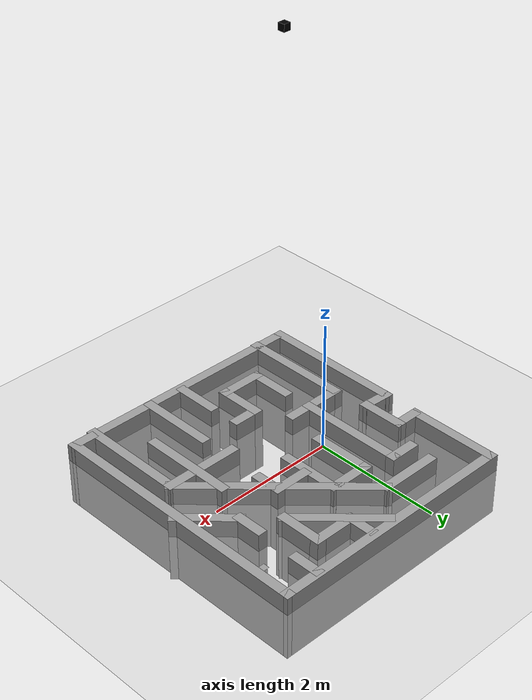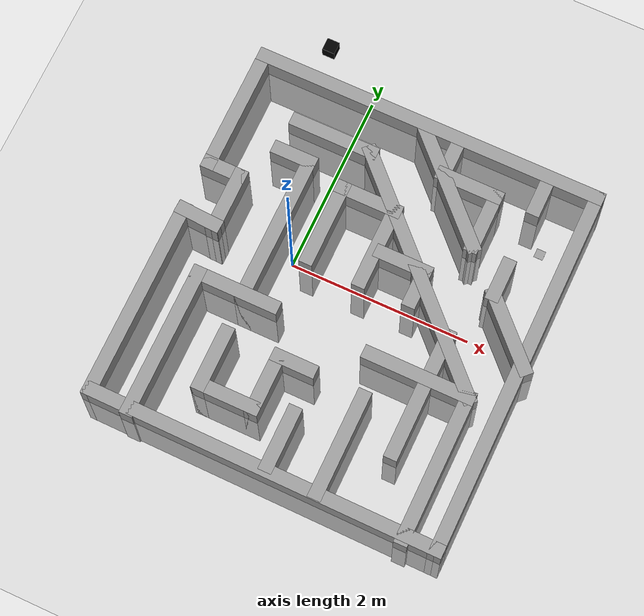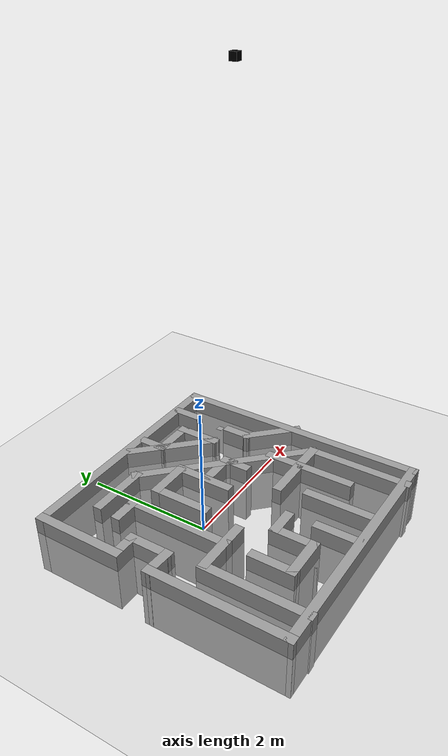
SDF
<sdf version="1.7">
 <world name="default">
  <model name="ground_plane">
   <static>1</static>
   <link name="link">
    <collision name="collision">
     <geometry><plane><normal>0 0 1</normal><size>100 100</size></plane></geometry>
     <surface>
      <contact><collide_bitmask>65535</collide_bitmask></contact>
      <friction><ode><mu>100</mu><mu2>50</mu2></ode></friction>
     </surface>
    </collision>
    <visual name="visual">
     <cast_shadows>0</cast_shadows>
     <geometry><plane><normal>0 0 1</normal><size>100 100</size></plane></geometry>
     <material>
      <script><uri>file://media/materials/scripts/gazebo.material</uri><name>Gazebo/Grey</name></script>
     </material>
    </visual>
   </link>
  </model>
  <light name="sun" type="directional">
   <pose>0 3 10 0 -0 0</pose>
   <diffuse>0.8 0.8 0.8 1</diffuse>
   <specular>0.2 0.2 0.2 1</specular>
   <attenuation>
    <range>1000</range>
    <constant>0.9</constant>
    <linear>0.01</linear>
    <quadratic>0.001</quadratic>
   </attenuation>
   <direction>-0.5 0.1 -0.9</direction>
   <spot><inner_angle>0</inner_angle><outer_angle>0</outer_angle><falloff>0</falloff></spot>
  </light>
  <scene><shadows>0</shadows><ambient>0.4 0.4 0.4 1</ambient><background>0.7 0.7 0.7 1</background></scene>
  <physics type="ode">
   <real_time_update_rate>1000</real_time_update_rate>
   <max_step_size>0.001</max_step_size>
   <real_time_factor>1</real_time_factor>
   <ode>
    <solver>
     <type>quick</type>
     <iters>150</iters>
     <precon_iters>0</precon_iters>
     <sor>1.4</sor>
     <use_dynamic_moi_rescaling>1</use_dynamic_moi_rescaling>
    </solver>
    <constraints>
     <cfm>1e-05</cfm>
     <erp>0.2</erp>
     <contact_max_correcting_vel>2000</contact_max_correcting_vel>
     <contact_surface_layer>0.01</contact_surface_layer>
    </constraints>
   </ode>
  </physics>
  <gravity>0 0 -9.8</gravity>
  <magnetic_field>6e-06 2.3e-05 -4.2e-05</magnetic_field>
  <atmosphere type="adiabatic"/>
  <audio><device>default</device></audio>
  <spherical_coordinates>
   <surface_model>EARTH_WGS84</surface_model>
   <latitude_deg>0</latitude_deg>
   <longitude_deg>0</longitude_deg>
   <elevation>0</elevation>
   <heading_deg>0</heading_deg>
  </spherical_coordinates>
  <model name="camera">
   <pose>0.579863 -0.18546 6.32055 1.57079 1.57079 3.14159</pose>
   <static>1</static>
   <link name="link">
    <inertial>
     <mass>0.1</mass>
     <inertia>
      <ixx>0.000166667</ixx>
      <iyy>0.000166667</iyy>
      <izz>0.000166667</izz>
      <ixy>0</ixy>
      <ixz>0</ixz>
      <iyz>0</iyz>
     </inertia>
    </inertial>
    <collision name="collision"><geometry><box><size>0.1 0.1 0.1</size></box></geometry></collision>
    <visual name="visual">
     <geometry><box><size>0.1 0.1 0.1</size></box></geometry>
     <material>
      <ambient>0 0 0 1</ambient>
      <diffuse>0 0 0 1</diffuse>
      <specular>0 0 0 0</specular>
      <emissive>1 0 0 1</emissive>
     </material>
    </visual>
    <sensor name="camera" type="camera">
     <camera>
      <horizontal_fov>0.934</horizontal_fov>
      <image><width>1920</width><height>1080</height></image>
      <clip><near>0.1</near><far>100</far></clip>
      <aspect_ratio>1.76</aspect_ratio>
     </camera>
     <plugin name="camera_controller" filename="libgazebo_ros_camera.so"/>
     <always_on>1</always_on>
     <update_rate>30</update_rate>
     <visualize>1</visualize>
    </sensor>
   </link>
  </model>
  <model name="mazeSWY">
   <static>1</static>
   <pose>0.699615 -0.12817 -0.743142 0 -0 0</pose>
   <include><uri>model://mazeSWY</uri></include>
  </model>
  <model name="Square_goal">
   <link name="link_0">
    <inertial>
     <mass>1</mass>
     <inertia>
      <ixx>0.166667</ixx>
      <ixy>0</ixy>
      <ixz>0</ixz>
      <iyy>0.166667</iyy>
      <iyz>0</iyz>
      <izz>0.166667</izz>
     </inertia>
    </inertial>
    <visual name="visual">
     <geometry><box><size>0.1 0.1 0.001</size></box></geometry>
     <material>
      <lighting>1</lighting>
      <script><uri>file://media/materials/scripts/gazebo.material</uri><name>Gazebo/Grey</name></script>
      <shader type="pixel"><normal_map>__default__</normal_map></shader>
      <ambient>0.3 0.3 0.3 1</ambient>
      <diffuse>0.7 0.7 0.7 1</diffuse>
      <specular>0.01 0.01 0.01 1</specular>
      <emissive>0 1 0 1</emissive>
     </material>
    </visual>
    <collision name="collision">
     <geometry><box><size>0.1 0.1 0.001</size></box></geometry>
     <surface>
      <friction>
       <ode><mu>1</mu><mu2>1</mu2><fdir1>0 0 0</fdir1><slip1>0</slip1><slip2>0</slip2></ode>
       <torsional>
        <coefficient>1</coefficient>
        <patch_radius>0</patch_radius>
        <surface_radius>0</surface_radius>
        <use_patch_radius>1</use_patch_radius>
        <ode><slip>0</slip></ode>
       </torsional>
      </friction>
      <bounce><restitution_coefficient>0</restitution_coefficient><threshold>1e+06</threshold></bounce>
      <contact>
       <collide_without_contact>0</collide_without_contact>
       <collide_without_contact_bitmask>1</collide_without_contact_bitmask>
       <collide_bitmask>1</collide_bitmask>
       <ode>
        <soft_cfm>0</soft_cfm>
        <soft_erp>0.2</soft_erp>
        <kp>1e+13</kp>
        <kd>1</kd>
        <max_vel>0.01</max_vel>
        <min_depth>0</min_depth>
       </ode>
       <bullet>
        <split_impulse>1</split_impulse>
        <split_impulse_penetration_threshold>-0.01</split_impulse_penetration_threshold>
        <soft_cfm>0</soft_cfm>
        <soft_erp>0.2</soft_erp>
        <kp>1e+13</kp>
        <kd>1</kd>
       </bullet>
      </contact>
     </surface>
    </collision>
   </link>
   <static>0</static>
   <pose>2.29996 1.20066 0.0005 0 -0 0</pose>
  </model>
 </world>
</sdf>

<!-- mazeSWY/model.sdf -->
<sdf version='1.6'>
  <model name='mazeSWY'>
    <pose frame=''>0.013574 -0.002409 0 0 -0 0</pose>
    <link name='Wall_0'>
      <collision name='Wall_0_Collision'>
        <geometry>
          <box>
            <size>4.03012 0.15 1</size>
          </box>
        </geometry>
        <pose frame=''>0 0 0.5 0 -0 0</pose>
      </collision>
      <visual name='Wall_0_Visual'>
        <pose frame=''>0 0 0.5 0 -0 0</pose>
        <geometry>
          <box>
            <size>4.03012 0.15 1</size>
          </box>
        </geometry>
        <material>
          <script>
            <uri>file://media/materials/scripts/gazebo.material</uri>
            <name>Gazebo/Grey</name>
          </script>
          <ambient>1 1 1 1</ambient>
        </material>
      </visual>
      <pose frame=''>-0.033574 -2.02259 0 0 0 -0.007732</pose>
    </link>
    <link name='Wall_11'>
      <collision name='Wall_11_Collision'>
        <geometry>
          <box>
            <size>1.75 0.15 1</size>
          </box>
        </geometry>
        <pose frame=''>0 0 0.5 0 -0 0</pose>
      </collision>
      <visual name='Wall_11_Visual'>
        <pose frame=''>0 0 0.5 0 -0 0</pose>
        <geometry>
          <box>
            <size>1.75 0.15 1</size>
          </box>
        </geometry>
        <material>
          <script>
            <uri>file://media/materials/scripts/gazebo.material</uri>
            <name>Gazebo/Grey</name>
          </script>
          <ambient>1 1 1 1</ambient>
        </material>
      </visual>
      <pose frame=''>-1.52357 -1.22759 0 0 -0 1.5708</pose>
    </link>

    <link name='Wall_2'>
      <collision name='Wall_2_Collision'>
        <geometry>
          <box>
            <size>4.26001 0.15 1</size>
          </box>
        </geometry>
        <pose frame=''>0 0 0.5 0 -0 0</pose>
      </collision>
      <visual name='Wall_2_Visual'>
        <pose frame=''>0 0 0.5 0 -0 0</pose>
        <geometry>
          <box>
            <size>4.26001 0.15 1</size>
          </box>
        </geometry>
        <material>
          <script>
            <uri>file://media/materials/scripts/gazebo.material</uri>
            <name>Gazebo/Grey</name>
          </script>
          <ambient>1 1 1 1</ambient>
        </material>
      </visual>
      <pose frame=''>1.90143 0.017409 0 0 -0 1.57323</pose>
    </link>
    <link name='Wall_205'>
      <collision name='Wall_205_Collision'>
        <geometry>
          <box>
            <size>1 0.15 1</size>
          </box>
        </geometry>
        <pose frame=''>0 0 0.5 0 -0 0</pose>
      </collision>
      <visual name='Wall_205_Visual'>
        <pose frame=''>0 0 0.5 0 -0 0</pose>
        <geometry>
          <box>
            <size>1 0.15 1</size>
          </box>
        </geometry>
        <material>
          <script>
            <uri>file://media/materials/scripts/gazebo.material</uri>
            <name>Gazebo/Grey</name>
          </script>
          <ambient>1 1 1 1</ambient>
        </material>
      </visual>
      <pose frame=''>-1.09857 -0.427591 0 0 -0 0</pose>
    </link>
    <link name='Wall_21'>
      <collision name='Wall_21_Collision'>
        <geometry>
          <box>
            <size>1.75 0.15 1</size>
          </box>
        </geometry>
        <pose frame=''>0 0 0.5 0 -0 0</pose>
      </collision>
      <visual name='Wall_21_Visual'>
        <pose frame=''>0 0 0.5 0 -0 0</pose>
        <geometry>
          <box>
            <size>1.75 0.15 1</size>
          </box>
        </geometry>
        <material>
          <script>
            <uri>file://media/materials/scripts/gazebo.material</uri>
            <name>Gazebo/Grey</name>
          </script>
          <ambient>1 1 1 1</ambient>
        </material>
      </visual>
      <pose frame=''>-1.00357 0.372409 0 0 -0 1.5708</pose>
    </link>
    <link name='Wall_22'>
      <collision name='Wall_22_Collision'>
        <geometry>
          <box>
            <size>0.5 0.15 1</size>
          </box>
        </geometry>
        <pose frame=''>0 0 0.5 0 -0 0</pose>
      </collision>
      <visual name='Wall_22_Visual'>
        <pose frame=''>0 0 0.5 0 -0 0</pose>
        <geometry>
          <box>
            <size>0.5 0.15 1</size>
          </box>
        </geometry>
        <material>
          <script>
            <uri>file://media/materials/scripts/gazebo.material</uri>
            <name>Gazebo/Grey</name>
          </script>
          <ambient>1 1 1 1</ambient>
        </material>
      </visual>
      <pose frame=''>-1.17857 1.17241 0 0 -0 3.14159</pose>
    </link>
    <link name='Wall_24'>
      <collision name='Wall_24_Collision'>
        <geometry>
          <box>
            <size>0.75 0.15 1</size>
          </box>
        </geometry>
        <pose frame=''>0 0 0.5 0 -0 0</pose>
      </collision>
      <visual name='Wall_24_Visual'>
        <pose frame=''>0 0 0.5 0 -0 0</pose>
        <geometry>
          <box>
            <size>0.75 0.15 1</size>
          </box>
        </geometry>
        <material>
          <script>
            <uri>file://media/materials/scripts/gazebo.material</uri>
            <name>Gazebo/Grey</name>
          </script>
          <ambient>1 1 1 1</ambient>
        </material>
      </visual>
      <pose frame=''>-0.983574 -1.18759 0 0 0 -1.5708</pose>
    </link>
    <link name='Wall_25'>
      <collision name='Wall_25_Collision'>
        <geometry>
          <box>
            <size>0.75 0.15 1</size>
          </box>
        </geometry>
        <pose frame=''>0 0 0.5 0 -0 0</pose>
      </collision>
      <visual name='Wall_25_Visual'>
        <pose frame=''>0 0 0.5 0 -0 0</pose>
        <geometry>
          <box>
            <size>0.75 0.15 1</size>
          </box>
        </geometry>
        <material>
          <script>
            <uri>file://media/materials/scripts/gazebo.material</uri>
            <name>Gazebo/Grey</name>
          </script>
          <ambient>1 1 1 1</ambient>
        </material>
      </visual>
      <pose frame=''>-0.683574 -1.48759 0 0 -0 0</pose>
    </link>
    <link name='Wall_26'>
      <collision name='Wall_26_Collision'>
        <geometry>
          <box>
            <size>0.75 0.15 1</size>
          </box>
        </geometry>
        <pose frame=''>0 0 0.5 0 -0 0</pose>
      </collision>
      <visual name='Wall_26_Visual'>
        <pose frame=''>0 0 0.5 0 -0 0</pose>
        <geometry>
          <box>
            <size>0.75 0.15 1</size>
          </box>
        </geometry>
        <material>
          <script>
            <uri>file://media/materials/scripts/gazebo.material</uri>
            <name>Gazebo/Grey</name>
          </script>
          <ambient>1 1 1 1</ambient>
        </material>
      </visual>
      <pose frame=''>-0.383574 -1.18759 0 0 -0 1.5708</pose>
    </link>
    <link name='Wall_27'>
      <collision name='Wall_27_Collision'>
        <geometry>
          <box>
            <size>0.5 0.15 1</size>
          </box>
        </geometry>
        <pose frame=''>0 0 0.5 0 -0 0</pose>
      </collision>
      <visual name='Wall_27_Visual'>
        <pose frame=''>0 0 0.5 0 -0 0</pose>
        <geometry>
          <box>
            <size>0.5 0.15 1</size>
          </box>
        </geometry>
        <material>
          <script>
            <uri>file://media/materials/scripts/gazebo.material</uri>
            <name>Gazebo/Grey</name>
          </script>
          <ambient>1 1 1 1</ambient>
        </material>
      </visual>
      <pose frame=''>-0.208574 -0.887591 0 0 -0 0</pose>
    </link>
    <link name='Wall_29'>
      <collision name='Wall_29_Collision'>
        <geometry>
          <box>
            <size>1 0.15 1</size>
          </box>
        </geometry>
        <pose frame=''>0 0 0.5 0 -0 0</pose>
      </collision>
      <visual name='Wall_29_Visual'>
        <pose frame=''>0 0 0.5 0 -0 0</pose>
        <geometry>
          <box>
            <size>1 0.15 1</size>
          </box>
        </geometry>
        <material>
          <script>
            <uri>file://media/materials/scripts/gazebo.material</uri>
            <name>Gazebo/Grey</name>
          </script>
          <ambient>1 1 1 1</ambient>
        </material>
      </visual>
      <pose frame=''>-0.888574 1.54241 0 0 -0 0</pose>
    </link>
    <link name='Wall_30'>
      <collision name='Wall_30_Collision'>
        <geometry>
          <box>
            <size>3 0.15 1</size>
          </box>
        </geometry>
        <pose frame=''>0 0 0.5 0 -0 0</pose>
      </collision>
      <visual name='Wall_30_Visual'>
        <pose frame=''>0 0 0.5 0 -0 0</pose>
        <geometry>
          <box>
            <size>3 0.15 1</size>
          </box>
        </geometry>
        <material>
          <script>
            <uri>file://media/materials/scripts/gazebo.material</uri>
            <name>Gazebo/Grey</name>
          </script>
          <ambient>1 1 1 1</ambient>
        </material>
      </visual>
      <pose frame=''>0.543926 0.534909 0 0 0 -0.785398</pose>
    </link>
    <link name='Wall_31'>
      <collision name='Wall_31_Collision'>
        <geometry>
          <box>
            <size>1.75 0.15 1</size>
          </box>
        </geometry>
        <pose frame=''>0 0 0.5 0 -0 0</pose>
      </collision>
      <visual name='Wall_31_Visual'>
        <pose frame=''>0 0 0.5 0 -0 0</pose>
        <geometry>
          <box>
            <size>1.75 0.15 1</size>
          </box>
        </geometry>
        <material>
          <script>
            <uri>file://media/materials/scripts/gazebo.material</uri>
            <name>Gazebo/Grey</name>
          </script>
          <ambient>1 1 1 1</ambient>
        </material>
      </visual>
      <pose frame=''>1.55143 -1.27259 0 0 0 -1.5708</pose>
    </link>
    <link name='Wall_33'>
      <collision name='Wall_33_Collision'>
        <geometry>
          <box>
            <size>0.75 0.15 1</size>
          </box>
        </geometry>
        <pose frame=''>0 0 0.5 0 -0 0</pose>
      </collision>
      <visual name='Wall_33_Visual'>
        <pose frame=''>0 0 0.5 0 -0 0</pose>
        <geometry>
          <box>
            <size>0.75 0.15 1</size>
          </box>
        </geometry>
        <material>
          <script>
            <uri>file://media/materials/scripts/gazebo.material</uri>
            <name>Gazebo/Grey</name>
          </script>
          <ambient>1 1 1 1</ambient>
        </material>
      </visual>
      <pose frame=''>-0.263574 1.05241 0 0 -0 3.14159</pose>
    </link>
    <link name='Wall_34'>
      <collision name='Wall_34_Collision'>
        <geometry>
          <box>
            <size>1 0.15 1</size>
          </box>
        </geometry>
        <pose frame=''>0 0 0.5 0 -0 0</pose>
      </collision>
      <visual name='Wall_34_Visual'>
        <pose frame=''>0 0 0.5 0 -0 0</pose>
        <geometry>
          <box>
            <size>1 0.15 1</size>
          </box>
        </geometry>
        <material>
          <script>
            <uri>file://media/materials/scripts/gazebo.material</uri>
            <name>Gazebo/Grey</name>
          </script>
          <ambient>1 1 1 1</ambient>
        </material>
      </visual>
      <pose frame=''>-0.563574 0.627409 0 0 0 -1.5708</pose>
    </link>
    <link name='Wall_36'>
      <collision name='Wall_36_Collision'>
        <geometry>
          <box>
            <size>1 0.15 1</size>
          </box>
        </geometry>
        <pose frame=''>0 0 0.5 0 -0 0</pose>
      </collision>
      <visual name='Wall_36_Visual'>
        <pose frame=''>0 0 0.5 0 -0 0</pose>
        <geometry>
          <box>
            <size>1 0.15 1</size>
          </box>
        </geometry>
        <material>
          <script>
            <uri>file://media/materials/scripts/gazebo.material</uri>
            <name>Gazebo/Grey</name>
          </script>
          <ambient>1 1 1 1</ambient>
        </material>
      </visual>
      <pose frame=''>0.036426 0.627409 0 0 0 -1.5708</pose>
    </link>
    <link name='Wall_38'>
      <collision name='Wall_38_Collision'>
        <geometry>
          <box>
            <size>0.64 0.15 1</size>
          </box>
        </geometry>
        <pose frame=''>0 0 0.5 0 -0 0</pose>
      </collision>
      <visual name='Wall_38_Visual'>
        <pose frame=''>0 0 0.5 0 -0 0</pose>
        <geometry>
          <box>
            <size>0.64 0.15 1</size>
          </box>
        </geometry>
        <material>
          <script>
            <uri>file://media/materials/scripts/gazebo.material</uri>
            <name>Gazebo/Grey</name>
          </script>
          <ambient>1 1 1 1</ambient>
        </material>
      </visual>
      <pose frame=''>0.351426 0.572409 0 0 -0 0</pose>
    </link>
    <link name='Wall_4'>
      <collision name='Wall_4_Collision'>
        <geometry>
          <box>
            <size>4 0.15 1</size>
          </box>
        </geometry>
        <pose frame=''>0 0 0.5 0 -0 0</pose>
      </collision>
      <visual name='Wall_4_Visual'>
        <pose frame=''>0 0 0.5 0 -0 0</pose>
        <geometry>
          <box>
            <size>4 0.15 1</size>
          </box>
        </geometry>
        <material>
          <script>
            <uri>file://media/materials/scripts/gazebo.material</uri>
            <name>Gazebo/Grey</name>
          </script>
          <ambient>1 1 1 1</ambient>
        </material>
      </visual>
      <pose frame=''>-0.028574 2.07241 0 0 -0 3.14159</pose>
    </link>
    <link name='Wall_42'>
      <collision name='Wall_42_Collision'>
        <geometry>
          <box>
            <size>0.5 0.15 1</size>
          </box>
        </geometry>
        <pose frame=''>0 0 0.5 0 -0 0</pose>
      </collision>
      <visual name='Wall_42_Visual'>
        <pose frame=''>0 0 0.5 0 -0 0</pose>
        <geometry>
          <box>
            <size>0.5 0.15 1</size>
          </box>
        </geometry>
        <material>
          <script>
            <uri>file://media/materials/scripts/gazebo.material</uri>
            <name>Gazebo/Grey</name>
          </script>
          <ambient>1 1 1 1</ambient>
        </material>
      </visual>
      <pose frame=''>0.596426 0.397409 0 0 0 -1.5708</pose>
    </link>
    <link name='Wall_44'>
      <collision name='Wall_44_Collision'>
        <geometry>
          <box>
            <size>1.5 0.15 1</size>
          </box>
        </geometry>
        <pose frame=''>0 0 0.5 0 -0 0</pose>
      </collision>
      <visual name='Wall_44_Visual'>
        <pose frame=''>0 0 0.5 0 -0 0</pose>
        <geometry>
          <box>
            <size>1.5 0.15 1</size>
          </box>
        </geometry>
        <material>
          <script>
            <uri>file://media/materials/scripts/gazebo.material</uri>
            <name>Gazebo/Grey</name>
          </script>
          <ambient>1 1 1 1</ambient>
        </material>
      </visual>
      <pose frame=''>1.09643 -0.642591 0 0 0 -1.5708</pose>
    </link>
    <link name='Wall_46'>
      <collision name='Wall_46_Collision'>
        <geometry>
          <box>
            <size>1.25 0.15 1</size>
          </box>
        </geometry>
        <pose frame=''>0 0 0.5 0 -0 0</pose>
      </collision>
      <visual name='Wall_46_Visual'>
        <pose frame=''>0 0 0.5 0 -0 0</pose>
        <geometry>
          <box>
            <size>1.25 0.15 1</size>
          </box>
        </geometry>
        <material>
          <script>
            <uri>file://media/materials/scripts/gazebo.material</uri>
            <name>Gazebo/Grey</name>
          </script>
          <ambient>1 1 1 1</ambient>
        </material>
      </visual>
      <pose frame=''>1.00143 -0.472591 0 0 -0 3.14159</pose>
    </link>
    <link name='Wall_48'>
      <collision name='Wall_48_Collision'>
        <geometry>
          <box>
            <size>1.25 0.15 1</size>
          </box>
        </geometry>
        <pose frame=''>0 0 0.5 0 -0 0</pose>
      </collision>
      <visual name='Wall_48_Visual'>
        <pose frame=''>0 0 0.5 0 -0 0</pose>
        <geometry>
          <box>
            <size>1.25 0.15 1</size>
          </box>
        </geometry>
        <material>
          <script>
            <uri>file://media/materials/scripts/gazebo.material</uri>
            <name>Gazebo/Grey</name>
          </script>
          <ambient>1 1 1 1</ambient>
        </material>
      </visual>
      <pose frame=''>0.576426 -1.46759 0 0 -0 1.5708</pose>
    </link>
    <link name='Wall_5'>
      <collision name='Wall_5_Collision'>
        <geometry>
          <box>
            <size>1.5 0.15 1</size>
          </box>
        </geometry>
        <pose frame=''>0 0 0.5 0 -0 0</pose>
      </collision>
      <visual name='Wall_5_Visual'>
        <pose frame=''>0 0 0.5 0 -0 0</pose>
        <geometry>
          <box>
            <size>1.5 0.15 1</size>
          </box>
        </geometry>
        <material>
          <script>
            <uri>file://media/materials/scripts/gazebo.material</uri>
            <name>Gazebo/Grey</name>
          </script>
          <ambient>1 1 1 1</ambient>
        </material>
      </visual>
      <pose frame=''>-1.95357 1.39741 0 0 0 -1.5708</pose>
    </link>
    <link name='Wall_50'>
      <collision name='Wall_50_Collision'>
        <geometry>
          <box>
            <size>0.75 0.15 1</size>
          </box>
        </geometry>
        <pose frame=''>0 0 0.5 0 -0 0</pose>
      </collision>
      <visual name='Wall_50_Visual'>
        <pose frame=''>0 0 0.5 0 -0 0</pose>
        <geometry>
          <box>
            <size>0.75 0.15 1</size>
          </box>
        </geometry>
        <material>
          <script>
            <uri>file://media/materials/scripts/gazebo.material</uri>
            <name>Gazebo/Grey</name>
          </script>
          <ambient>1 1 1 1</ambient>
        </material>
      </visual>
      <pose frame=''>0.006426 -1.66759 0 0 -0 1.5708</pose>
    </link>
    <link name='Wall_52'>
      <collision name='Wall_52_Collision'>
        <geometry>
          <box>
            <size>1 0.15 1</size>
          </box>
        </geometry>
        <pose frame=''>0 0 0.5 0 -0 0</pose>
      </collision>
      <visual name='Wall_52_Visual'>
        <pose frame=''>0 0 0.5 0 -0 0</pose>
        <geometry>
          <box>
            <size>1 0.15 1</size>
          </box>
        </geometry>
        <material>
          <script>
            <uri>file://media/materials/scripts/gazebo.material</uri>
            <name>Gazebo/Grey</name>
          </script>
          <ambient>1 1 1 1</ambient>
        </material>
      </visual>
      <pose frame=''>1.64593 0.342909 0 0 -0 2.35619</pose>
    </link>
    <link name='Wall_53'>
      <collision name='Wall_53_Collision'>
        <geometry>
          <box>
            <size>0.5 0.15 1</size>
          </box>
        </geometry>
        <pose frame=''>0 0 0.5 0 -0 0</pose>
      </collision>
      <visual name='Wall_53_Visual'>
        <pose frame=''>0 0 0.5 0 -0 0</pose>
        <geometry>
          <box>
            <size>0.5 0.15 1</size>
          </box>
        </geometry>
        <material>
          <script>
            <uri>file://media/materials/scripts/gazebo.material</uri>
            <name>Gazebo/Grey</name>
          </script>
          <ambient>1 1 1 1</ambient>
        </material>
      </visual>
      <pose frame=''>1.34543 0.818409 0 0 -0 1.5708</pose>
    </link>
    <link name='Wall_55'>
      <collision name='Wall_55_Collision'>
        <geometry>
          <box>
            <size>0.5 0.15 1</size>
          </box>
        </geometry>
        <pose frame=''>0 0 0.5 0 -0 0</pose>
      </collision>
      <visual name='Wall_55_Visual'>
        <pose frame=''>0 0 0.5 0 -0 0</pose>
        <geometry>
          <box>
            <size>0.5 0.15 1</size>
          </box>
        </geometry>
        <material>
          <script>
            <uri>file://media/materials/scripts/gazebo.material</uri>
            <name>Gazebo/Grey</name>
          </script>
          <ambient>1 1 1 1</ambient>
        </material>
      </visual>
      <pose frame=''>1.35643 1.85741 0 0 0 -1.5708</pose>
    </link>
    <link name='Wall_57'>
      <collision name='Wall_57_Collision'>
        <geometry>
          <box>
            <size>1.50057 0.15 1</size>
          </box>
        </geometry>
        <pose frame=''>0 0 0.5 0 -0 0</pose>
      </collision>
      <visual name='Wall_57_Visual'>
        <pose frame=''>0 0 0.5 0 -0 0</pose>
        <geometry>
          <box>
            <size>1.50057 0.15 1</size>
          </box>
        </geometry>
        <material>
          <script>
            <uri>file://media/materials/scripts/gazebo.material</uri>
            <name>Gazebo/Grey</name>
          </script>
          <ambient>1 1 1 1</ambient>
        </material>
      </visual>
      <pose frame=''>0.453926 1.51491 0 0 0 -0.785398</pose>
    </link>
    <link name='Wall_58'>
      <collision name='Wall_58_Collision'>
        <geometry>
          <box>
            <size>0.750406 0.15 1</size>
          </box>
        </geometry>
        <pose frame=''>0 0 0.5 0 -0 0</pose>
      </collision>
      <visual name='Wall_58_Visual'>
        <pose frame=''>0 0 0.5 0 -0 0</pose>
        <geometry>
          <box>
            <size>0.750406 0.15 1</size>
          </box>
        </geometry>
        <material>
          <script>
            <uri>file://media/materials/scripts/gazebo.material</uri>
            <name>Gazebo/Grey</name>
          </script>
          <ambient>1 1 1 1</ambient>
        </material>
      </visual>
      <pose frame=''>0.931426 1.33741 0 0 -0 1.5708</pose>
    </link>
    <link name='Wall_59'>
      <collision name='Wall_59_Collision'>
        <geometry>
          <box>
            <size>0.75 0.15 1</size>
          </box>
        </geometry>
        <pose frame=''>0 0 0.5 0 -0 0</pose>
      </collision>
      <visual name='Wall_59_Visual'>
        <pose frame=''>0 0 0.5 0 -0 0</pose>
        <geometry>
          <box>
            <size>0.75 0.15 1</size>
          </box>
        </geometry>
        <material>
          <script>
            <uri>file://media/materials/scripts/gazebo.material</uri>
            <name>Gazebo/Grey</name>
          </script>
          <ambient>1 1 1 1</ambient>
        </material>
      </visual>
      <pose frame=''>0.631426 1.63741 0 0 -0 3.14159</pose>
    </link>
    <link name='Wall_6'>
      <collision name='Wall_6_Collision'>
        <geometry>
          <box>
            <size>0.5 0.15 1</size>
          </box>
        </geometry>
        <pose frame=''>0 0 0.5 0 -0 0</pose>
      </collision>
      <visual name='Wall_6_Visual'>
        <pose frame=''>0 0 0.5 0 -0 0</pose>
        <geometry>
          <box>
            <size>0.5 0.15 1</size>
          </box>
        </geometry>
        <material>
          <script>
            <uri>file://media/materials/scripts/gazebo.material</uri>
            <name>Gazebo/Grey</name>
          </script>
          <ambient>1 1 1 1</ambient>
        </material>
      </visual>
      <pose frame=''>-1.77857 0.722409 0 0 -0 0</pose>
    </link>
    <link name='Wall_60'>
      <collision name='Wall_60_Collision'>
        <geometry>
          <box>
            <size>0.5 0.15 1</size>
          </box>
        </geometry>
        <pose frame=''>0 0 0.5 0 -0 0</pose>
      </collision>
      <visual name='Wall_60_Visual'>
        <pose frame=''>0 0 0.5 0 -0 0</pose>
        <geometry>
          <box>
            <size>0.5 0.15 1</size>
          </box>
        </geometry>
        <material>
          <script>
            <uri>file://media/materials/scripts/gazebo.material</uri>
            <name>Gazebo/Grey</name>
          </script>
          <ambient>1 1 1 1</ambient>
        </material>
      </visual>
      <pose frame=''>0.331426 1.81241 0 0 -0 1.5708</pose>
    </link>
    <link name='Wall_7'>
      <collision name='Wall_7_Collision'>
        <geometry>
          <box>
            <size>0.75 0.15 1</size>
          </box>
        </geometry>
        <pose frame=''>0 0 0.5 0 -0 0</pose>
      </collision>
      <visual name='Wall_7_Visual'>
        <pose frame=''>0 0 0.5 0 -0 0</pose>
        <geometry>
          <box>
            <size>0.75 0.15 1</size>
          </box>
        </geometry>
        <material>
          <script>
            <uri>file://media/materials/scripts/gazebo.material</uri>
            <name>Gazebo/Grey</name>
          </script>
          <ambient>1 1 1 1</ambient>
        </material>
      </visual>
      <pose frame=''>-1.60357 0.422409 0 0 0 -1.5708</pose>
    </link>
    <link name='Wall_8'>
      <collision name='Wall_8_Collision'>
        <geometry>
          <box>
            <size>0.52054 0.15 1</size>
          </box>
        </geometry>
        <pose frame=''>0 0 0.5 0 -0 0</pose>
      </collision>
      <visual name='Wall_8_Visual'>
        <pose frame=''>0 0 0.5 0 -0 0</pose>
        <geometry>
          <box>
            <size>0.52054 0.15 1</size>
          </box>
        </geometry>
        <material>
          <script>
            <uri>file://media/materials/scripts/gazebo.material</uri>
            <name>Gazebo/Grey</name>
          </script>
          <ambient>1 1 1 1</ambient>
        </material>
      </visual>
      <pose frame=''>-1.78857 0.132409 0 0 -0 3.08759</pose>
    </link>
    <link name='Wall_9'>
      <collision name='Wall_9_Collision'>
        <geometry>
          <box>
            <size>2.3 0.15 1</size>
          </box>
        </geometry>
        <pose frame=''>0 0 0.5 0 -0 0</pose>
      </collision>
      <visual name='Wall_9_Visual'>
        <pose frame=''>0 0 0.5 0 -0 0</pose>
        <geometry>
          <box>
            <size>2.3 0.15 1</size>
          </box>
        </geometry>
        <material>
          <script>
            <uri>file://media/materials/scripts/gazebo.material</uri>
            <name>Gazebo/Grey</name>
          </script>
          <ambient>1 1 1 1</ambient>
        </material>
      </visual>
      <pose frame=''>-1.97357 -0.932591 0 0 0 -1.5708</pose>
    </link>
    <static>1</static>
  </model>
</sdf>
